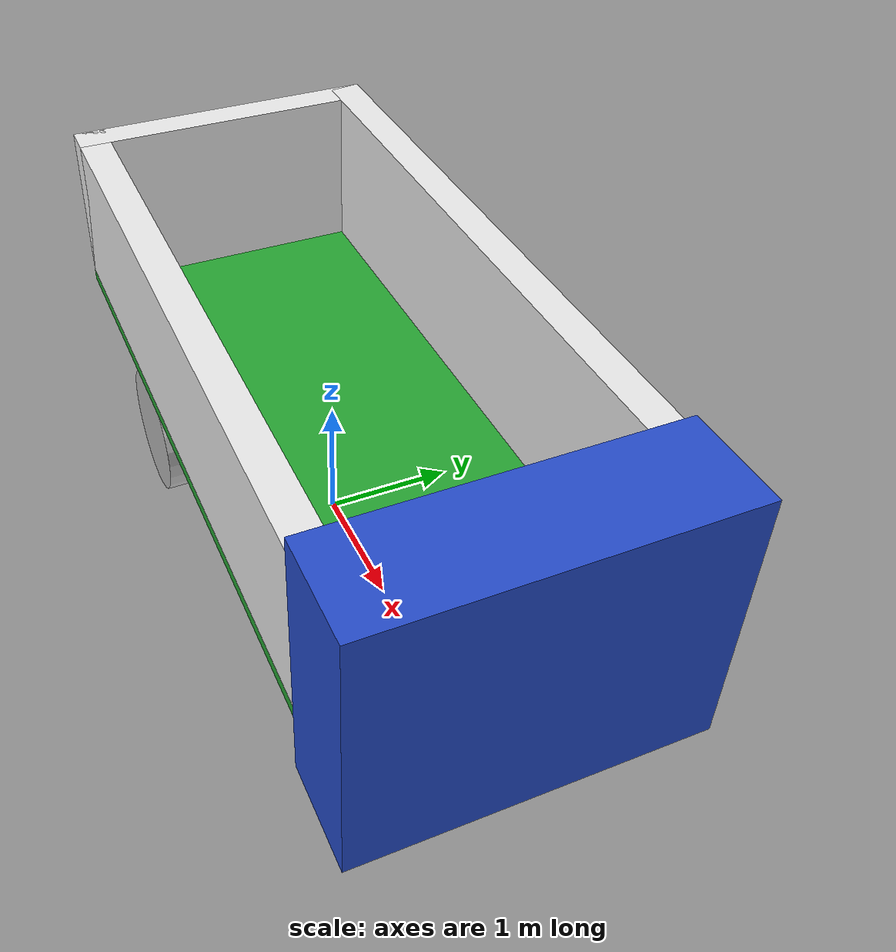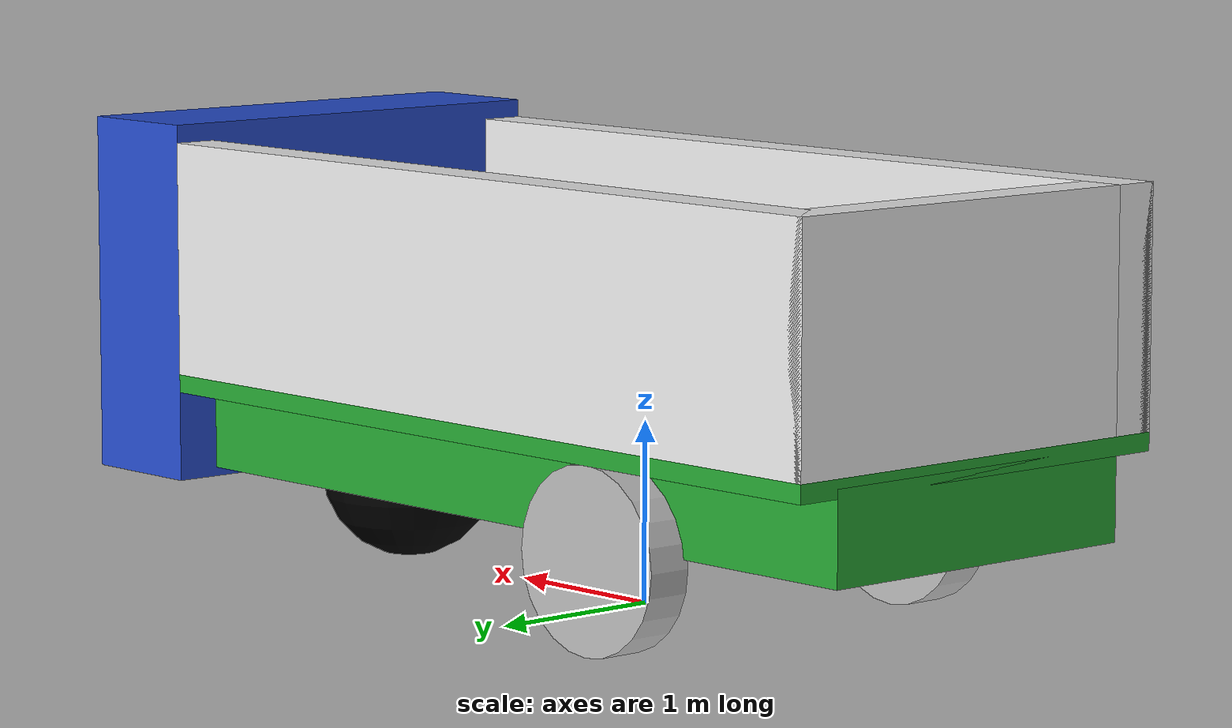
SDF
<?xml version="1.0" ?>
<sdf version="1.10">

  <model name="garbage_truck">
    <static>false</static>

    <!-- Chassis -->
    <link name="chassis">
      <pose>0 0 0.8 0 0 0</pose>
      <inertial>
        <mass>1000</mass>
        <inertia>
          <ixx>500</ixx> <iyy>1200</iyy> <izz>1000</izz>
          <ixy>0</ixy> <ixz>0</ixz> <iyz>0</iyz>
        </inertia>
      </inertial>
      <collision name="chassis_collision">
        <geometry>
          <box>
            <size>5 2 0.6</size>
          </box>
        </geometry>
      </collision>
      <visual name="chassis_visual">
        <geometry>
          <box>
            <size>5 2 0.5</size>
          </box>
        </geometry>
        <material>
          <script>
            <uri>file://media/materials/scripts/gazebo.material</uri>
            <name>Gazebo/Green</name>
          </script>
        </material>
      </visual>

      <!-- IMU Sensor -->
      <sensor name="imu_sensor" type="imu">
        <always_on>1</always_on>
        <update_rate>50</update_rate>
        <visualize>true</visualize>
        <topic>imu</topic>
      </sensor>

      <!-- GPS Sensor -->
      <sensor name="gps_sensor" type="navsat">
        <always_on>true</always_on>
        <update_rate>50</update_rate>
        <topic>gps</topic>
      </sensor>

    </link>

    <!-- Car Structure -->
    <link name="front">
      <pose>2.875 0 1.5 0 0 0</pose>
      <inertial>
        <mass>1</mass>
        <inertia>
          <ixx>500</ixx> <iyy>1200</iyy> <izz>1000</izz>
          <ixy>0</ixy> <ixz>0</ixz> <iyz>0</iyz>
        </inertia>
      </inertial>
      <collision name="front_collision">
        <geometry>
          <box>
            <size> 0.75 2.5 2</size>
          </box>
        </geometry>
      </collision>
      <visual name="front_visual">
        <geometry>
          <box>
            <size> 0.75 2.5 2</size>
          </box>
        </geometry>
        <material>
          <script>
            <uri>file://media/materials/scripts/gazebo.material</uri>
            <name>Gazebo/Blue</name>
          </script>
        </material>
      </visual>
    </link>

    <joint name="joint_front_and_chasis" type="fixed">
      <parent>chassis</parent>
      <child>front</child>
    </joint>

    <link name="bottom">
      <pose> 0 0 1.05 0 0 0</pose>
      <inertial>
        <mass>1</mass>
        <inertia>
          <ixx>500</ixx> <iyy>1200</iyy> <izz>1000</izz>
          <ixy>0</ixy> <ixz>0</ixz> <iyz>0</iyz>
        </inertia>
      </inertial>
      <collision name="bottom_collision">
        <geometry>
          <box>
            <size> 5 2.5 0.1</size>
          </box>
        </geometry>
      </collision>
      <visual name="bottom_visual">
        <geometry>
          <box>
            <size> 5 2.5 0.1</size>
          </box>
        </geometry>
        <material>
          <script>
            <uri>file://media/materials/scripts/gazebo.material</uri>
            <name>Gazebo/Green</name>
          </script>
        </material>
      </visual>
    </link>

    <joint name="joint_bottom_and_chasis" type="fixed">
      <parent>chassis</parent>
      <child>bottom</child>
    </joint>

    <link name="back">
      <pose> -2.375 0 1.75 0 0 0</pose>
      <inertial>
        <mass>1</mass>
        <inertia>
          <ixx>500</ixx> <iyy>1200</iyy> <izz>1000</izz>
          <ixy>0</ixy> <ixz>0</ixz> <iyz>0</iyz>
        </inertia>
      </inertial>
      <collision name="back_collision">
        <geometry>
          <box>
            <size> 0.25 2.5 1.3</size>
          </box>
        </geometry>
      </collision>
      <visual name="back_visual">
        <geometry>
          <box>
            <size> 0.25 2.5 1.3</size>
          </box>
        </geometry>
        <material>
          <script>
            <uri>file://media/materials/scripts/gazebo.material</uri>
            <name>Gazebo/White</name>
          </script>
        </material>
      </visual>
    </link>

    <joint name="joint_back_and_bottom" type="fixed">
      <parent>bottom</parent>
      <child>back</child>
    </joint>

    <link name="left">
      <pose> 0 1.125 1.75 0 0 0</pose>
      <inertial>
        <mass>1</mass>
        <inertia>
          <ixx>500</ixx> <iyy>1200</iyy> <izz>1000</izz>
          <ixy>0</ixy> <ixz>0</ixz> <iyz>0</iyz>
        </inertia>
      </inertial>
      <collision name="left_collision">
        <geometry>
          <box>
            <size> 5 0.25 1.3</size>
          </box>
        </geometry>
      </collision>
      <visual name="left_visual">
        <geometry>
          <box>
            <size> 5 0.25 1.3</size>
          </box>
        </geometry>
        <material>
          <script>
            <uri>file://media/materials/scripts/gazebo.material</uri>
            <name>Gazebo/White</name>
          </script>
        </material>
      </visual>
    </link>

    <joint name="joint_left_and_bottom" type="fixed">
      <parent>bottom</parent>
      <child>left</child>
    </joint>

    <link name="right">
      <pose> 0 -1.125 1.75 0 0 0</pose>
      <inertial>
        <mass>1</mass>
        <inertia>
          <ixx>500</ixx> <iyy>1200</iyy> <izz>1000</izz>
          <ixy>0</ixy> <ixz>0</ixz> <iyz>0</iyz>
        </inertia>
      </inertial>
      <collision name="right_collision">
        <geometry>
          <box>
            <size> 5 0.25 1.3</size>
          </box>
        </geometry>
      </collision>
      <visual name="right_visual">
        <geometry>
          <box>
            <size> 5 0.25 1.3</size>
          </box>
        </geometry>
        <material>
          <script>
            <uri>file://media/materials/scripts/gazebo.material</uri>
            <name>Gazebo/White</name>
          </script>
        </material>
      </visual>
    </link>

    <joint name="joint_right_and_bottom" type="fixed">
      <parent>bottom</parent>
      <child>right</child>
    </joint>

    <!-- Wheels -->

    <link name="wheel_center_left">
      <pose> -0.9 1.1 0.5 -1.5707 0 0</pose>
      <inertial>
        <mass>1</mass>
      </inertial>
      <collision name="collision">
        <geometry>
          <cylinder>
            <radius>0.5</radius>
            <length>0.25</length>
          </cylinder>
        </geometry>
      </collision>
      <visual name="visual">
        <geometry>
          <cylinder>
            <radius>0.5</radius>
            <length>0.25</length>
          </cylinder>
        </geometry>
      </visual>
    </link>

    <link name="wheel_center_right">
      <pose> -0.9 -1.1 0.5 -1.5707 0 0</pose>
      <inertial>
        <mass>1</mass>
      </inertial>
      <collision name="collision">
        <geometry>
          <cylinder>
            <radius>0.5</radius>
            <length>0.25</length>
          </cylinder>
        </geometry>
      </collision>
      <visual name="visual">
        <geometry>
          <cylinder>
            <radius>0.5</radius>
            <length>0.25</length>
          </cylinder>
        </geometry>
      </visual>
    </link>

    <!--caster wheel-->
    <frame name="caster_frame" attached_to='chassis'>
        <pose>2 0 -0.3 0 0 0</pose>
    </frame>

    <link name='caster'>
        <pose relative_to='caster_frame'/>
        <inertial>
            <mass>1</mass>
            <inertia>
                <ixx>0.016</ixx>
                <ixy>0</ixy>
                <ixz>0</ixz>
                <iyy>0.016</iyy>
                <iyz>0</iyz>
                <izz>0.016</izz>
            </inertia>
        </inertial>
        <visual name='visual'>
            <geometry>
                <sphere>
                    <radius>0.5</radius>
                </sphere>
            </geometry>
            <material>
                <ambient>0.0 0.0 0.0 1</ambient>
                <diffuse>0.0 0.0 0.0 1</diffuse>
                <specular>0.0 0.0 0.0 1</specular>
            </material>
        </visual>
        <collision name='collision'>
            <geometry>
                <sphere>
                    <radius>0.5</radius>
                </sphere>
            </geometry>
        </collision>
    </link>

    <!-- Wheel joints -->

    <joint name="joint_wheel_center_left" type="revolute">
      <parent>chassis</parent>
      <child>wheel_center_left</child>
      <axis>
        <xyz expressed_in='__model__'>0 1 0</xyz>
        <limit>
          <lower>-1.79769e+308</lower>
          <upper>1.79769e+308</upper>
          <effort>10000</effort>
          <velocity>100.0</velocity>
        </limit>
      </axis>
    </joint>

    <joint name="joint_wheel_center_right" type="revolute">
      <parent>chassis</parent>
      <child>wheel_center_right</child>
      <axis>
        <xyz expressed_in='__model__'>0 1 0</xyz>
        <limit>
          <lower>-1.79769e+308</lower>
          <upper>1.79769e+308</upper>
          <effort>10000</effort>
          <velocity>100.0</velocity>
        </limit>
      </axis>
    </joint>

    <joint name='caster_wheel' type='ball'>
        <parent>chassis</parent>
        <child>caster</child>
    </joint>

    <!-- Define a link for the front camera -->
    <link name="front_camera_link">
      <pose>-3 0 1.5 0 0 0</pose>  <!-- Adjust position (x y z roll pitch yaw) -->

      <sensor name="front_camera" type="camera">
        <always_on>true</always_on>
        <update_rate>30</update_rate>  <!-- 30 FPS -->
        <camera>
          <horizontal_fov>1.57</horizontal_fov>  <!-- Field of View (90 degrees) -->
          <image>
            <width>640</width>
            <height>480</height>
            <format>R8G8B8</format>
          </image>
          <clip>
            <near>0.1</near>
            <far>100</far>
          </clip>
        </camera>
        <plugin name="camera_controller" filename="libgazebo_ros_camera.so">
          <ros>
            <namespace>/garbage_truck</namespace>
            <remapping>image_raw:=camera/image_raw</remapping>
          </ros>
        </plugin>
      </sensor>
    </link>

  <!-- Differential Driving -->
  <plugin
      filename="gz-sim-diff-drive-system"
      name="gz::sim::systems::DiffDrive">
      <left_joint>joint_wheel_center_left</left_joint>
      <right_joint>joint_wheel_center_right</right_joint>
      <wheel_separation>2.2</wheel_separation>
      <wheel_radius>0.5</wheel_radius>
      <odom_publish_frequency>1</odom_publish_frequency>
      <topic>cmd_vel</topic>
      <max_torque>10000.0</max_torque>
      <max_velocity>100.0</max_velocity>
  </plugin>

  <!-- IMU Sensor -->
  <plugin filename="gz-sim-imu-system"
        name="gz::sim::systems::Imu">
  </plugin>

  <!-- GPS Sensor -->
  <plugin filename="gz-sim-navsat-system"
        name="gz::sim::systems::NavSat">
  </plugin>

  </model>
</sdf>
